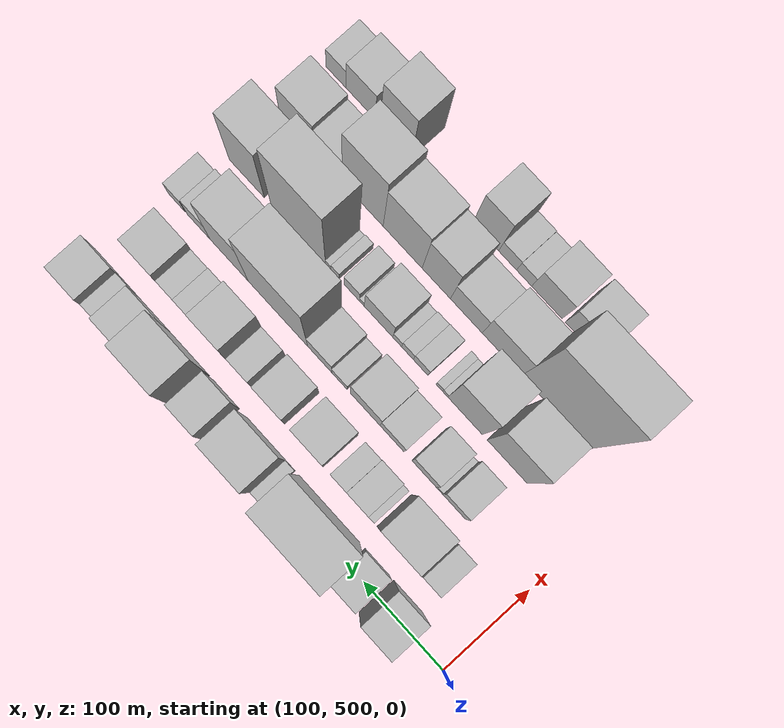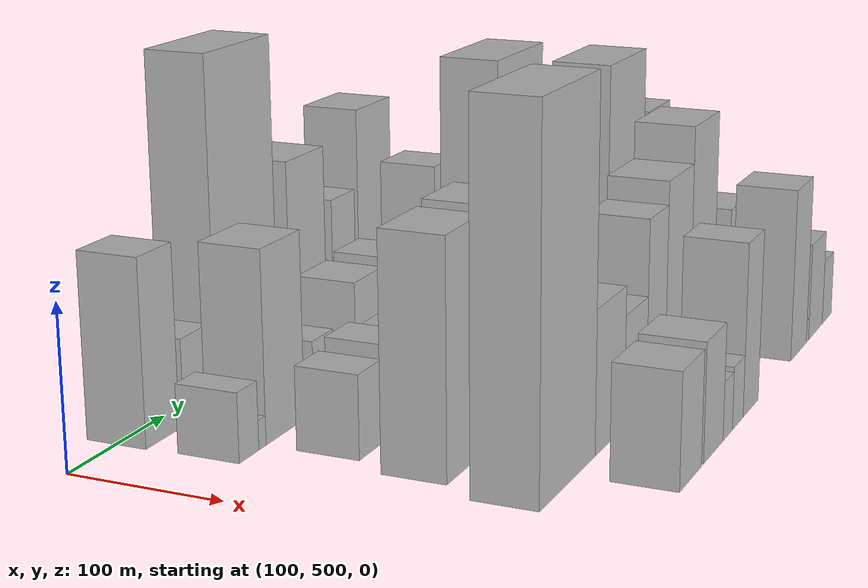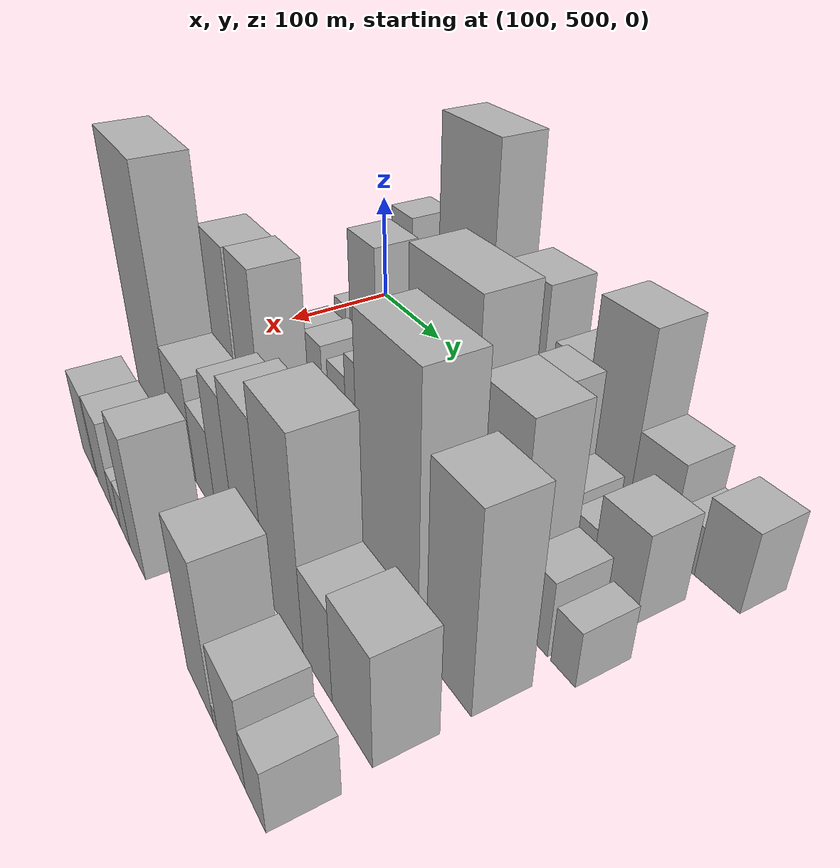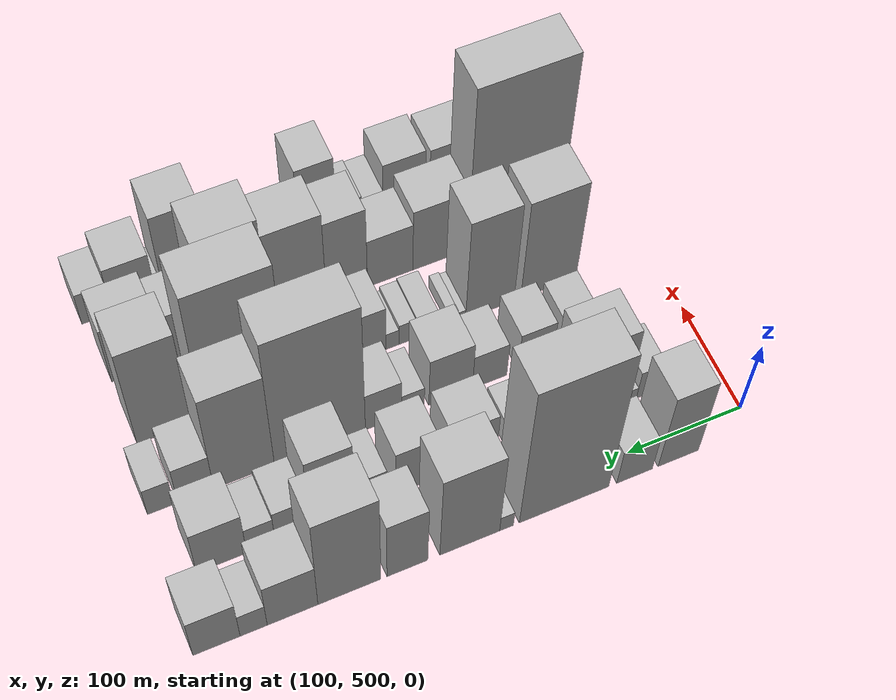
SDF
<sdf version="1.6">
 <world name="default">
  <model name="building_41">
   <static>1</static>
   <pose>100.0000 566.3018 0 0.000000 0.000000 0.000000</pose>
   <link name="link">
    <pose>0 0 57.00 0 0 0</pose>
    <collision name="collision"><geometry><box><size>40.0000 35.5671 114.0000</size></box></geometry></collision>
    <visual name="visual">
     <cast_shadows>0</cast_shadows>
     <geometry><box><size>40.0000 35.5671 114.0000</size></box></geometry>
     <material>
      <script>
       <uri>model://HANNAS_wall/materials/scripts</uri>
       <uri>model://HANNAS_wall/materials/textures</uri>
       <name>vrc/HANNAS_wall</name>
      </script>
     </material>
    </visual>
   </link>
  </model>
  <model name="building_42">
   <static>1</static>
   <pose>100.0000 604.6033 0 0.000000 0.000000 0.000000</pose>
   <link name="link">
    <pose>0 0 27.00 0 0 0</pose>
    <collision name="collision"><geometry><box><size>40.0000 31.0360 54.0000</size></box></geometry></collision>
    <visual name="visual">
     <cast_shadows>0</cast_shadows>
     <geometry><box><size>40.0000 31.0360 54.0000</size></box></geometry>
     <material>
      <script>
       <uri>model://HANNAS_wall/materials/scripts</uri>
       <uri>model://HANNAS_wall/materials/textures</uri>
       <name>vrc/HANNAS_wall</name>
      </script>
     </material>
    </visual>
   </link>
  </model>
  <model name="building_43">
   <static>1</static>
   <pose>100.0000 665.5144 0 0.000000 0.000000 0.000000</pose>
   <link name="link">
    <pose>0 0 108.00 0 0 0</pose>
    <collision name="collision"><geometry><box><size>40.0000 76.7862 216.0000</size></box></geometry></collision>
    <visual name="visual">
     <cast_shadows>0</cast_shadows>
     <geometry><box><size>40.0000 76.7862 216.0000</size></box></geometry>
     <material>
      <script>
       <uri>model://HANNAS_wall/materials/scripts</uri>
       <uri>model://HANNAS_wall/materials/textures</uri>
       <name>vrc/HANNAS_wall</name>
      </script>
     </material>
    </visual>
   </link>
  </model>
  <model name="building_44">
   <static>1</static>
   <pose>100.0000 714.7416 0 0.000000 0.000000 0.000000</pose>
   <link name="link">
    <pose>0 0 12.00 0 0 0</pose>
    <collision name="collision"><geometry><box><size>40.0000 11.6681 24.0000</size></box></geometry></collision>
    <visual name="visual">
     <cast_shadows>0</cast_shadows>
     <geometry><box><size>40.0000 11.6681 24.0000</size></box></geometry>
     <material>
      <script>
       <uri>model://HANNAS_wall/materials/scripts</uri>
       <uri>model://HANNAS_wall/materials/textures</uri>
       <name>vrc/HANNAS_wall</name>
      </script>
     </material>
    </visual>
   </link>
  </model>
  <model name="building_45">
   <static>1</static>
   <pose>100.0000 745.6814 0 0.000000 0.000000 0.000000</pose>
   <link name="link">
    <pose>0 0 66.00 0 0 0</pose>
    <collision name="collision"><geometry><box><size>40.0000 50.2116 132.0000</size></box></geometry></collision>
    <visual name="visual">
     <cast_shadows>0</cast_shadows>
     <geometry><box><size>40.0000 50.2116 132.0000</size></box></geometry>
     <material>
      <script>
       <uri>model://HANNAS_wall/materials/scripts</uri>
       <uri>model://HANNAS_wall/materials/textures</uri>
       <name>vrc/HANNAS_wall</name>
      </script>
     </material>
    </visual>
   </link>
  </model>
  <model name="building_46">
   <static>1</static>
   <pose>100.0000 797.6529 0 0.000000 0.000000 0.000000</pose>
   <link name="link">
    <pose>0 0 46.50 0 0 0</pose>
    <collision name="collision"><geometry><box><size>40.0000 33.7313 93.0000</size></box></geometry></collision>
    <visual name="visual">
     <cast_shadows>0</cast_shadows>
     <geometry><box><size>40.0000 33.7313 93.0000</size></box></geometry>
     <material>
      <script>
       <uri>model://HANNAS_wall/materials/scripts</uri>
       <uri>model://HANNAS_wall/materials/textures</uri>
       <name>vrc/HANNAS_wall</name>
      </script>
     </material>
    </visual>
   </link>
  </model>
  <model name="building_47">
   <static>1</static>
   <pose>100.0000 845.2225 0 0.000000 0.000000 0.000000</pose>
   <link name="link">
    <pose>0 0 73.50 0 0 0</pose>
    <collision name="collision"><geometry><box><size>40.0000 51.4080 147.0000</size></box></geometry></collision>
    <visual name="visual">
     <cast_shadows>0</cast_shadows>
     <geometry><box><size>40.0000 51.4080 147.0000</size></box></geometry>
     <material>
      <script>
       <uri>model://HANNAS_wall/materials/scripts</uri>
       <uri>model://HANNAS_wall/materials/textures</uri>
       <name>vrc/HANNAS_wall</name>
      </script>
     </material>
    </visual>
   </link>
  </model>
  <model name="building_48">
   <static>1</static>
   <pose>100.0000 891.3155 0 0.000000 0.000000 0.000000</pose>
   <link name="link">
    <pose>0 0 36.00 0 0 0</pose>
    <collision name="collision"><geometry><box><size>40.0000 40.7779 72.0000</size></box></geometry></collision>
    <visual name="visual">
     <cast_shadows>0</cast_shadows>
     <geometry><box><size>40.0000 40.7779 72.0000</size></box></geometry>
     <material>
      <script>
       <uri>model://HANNAS_wall/materials/scripts</uri>
       <uri>model://HANNAS_wall/materials/textures</uri>
       <name>vrc/HANNAS_wall</name>
      </script>
     </material>
    </visual>
   </link>
  </model>
  <model name="building_49">
   <static>1</static>
   <pose>100.0000 922.5424 0 0.000000 0.000000 0.000000</pose>
   <link name="link">
    <pose>0 0 19.50 0 0 0</pose>
    <collision name="collision"><geometry><box><size>40.0000 21.6759 39.0000</size></box></geometry></collision>
    <visual name="visual">
     <cast_shadows>0</cast_shadows>
     <geometry><box><size>40.0000 21.6759 39.0000</size></box></geometry>
     <material>
      <script>
       <uri>model://HANNAS_wall/materials/scripts</uri>
       <uri>model://HANNAS_wall/materials/textures</uri>
       <name>vrc/HANNAS_wall</name>
      </script>
     </material>
    </visual>
   </link>
  </model>
  <model name="building_50">
   <static>1</static>
   <pose>100.0000 952.0744 0 0.000000 0.000000 0.000000</pose>
   <link name="link">
    <pose>0 0 31.50 0 0 0</pose>
    <collision name="collision"><geometry><box><size>40.0000 37.3882 63.0000</size></box></geometry></collision>
    <visual name="visual">
     <cast_shadows>0</cast_shadows>
     <geometry><box><size>40.0000 37.3882 63.0000</size></box></geometry>
     <material>
      <script>
       <uri>model://HANNAS_wall/materials/scripts</uri>
       <uri>model://HANNAS_wall/materials/textures</uri>
       <name>vrc/HANNAS_wall</name>
      </script>
     </material>
    </visual>
   </link>
  </model>
  <model name="building_87">
   <static>1</static>
   <pose>160.0000 561.3710 0 0.000000 0.000000 0.000000</pose>
   <link name="link">
    <pose>0 0 21.00 0 0 0</pose>
    <collision name="collision"><geometry><box><size>40.0000 22.0824 42.0000</size></box></geometry></collision>
    <visual name="visual">
     <cast_shadows>0</cast_shadows>
     <geometry><box><size>40.0000 22.0824 42.0000</size></box></geometry>
     <material>
      <script>
       <uri>model://HANNAS_wall/materials/scripts</uri>
       <uri>model://HANNAS_wall/materials/textures</uri>
       <name>vrc/HANNAS_wall</name>
      </script>
     </material>
    </visual>
   </link>
  </model>
  <model name="building_88">
   <static>1</static>
   <pose>160.0000 576.6413 0 0.000000 0.000000 0.000000</pose>
   <link name="link">
    <pose>0 0 9.00 0 0 0</pose>
    <collision name="collision"><geometry><box><size>40.0000 8.4582 18.0000</size></box></geometry></collision>
    <visual name="visual">
     <cast_shadows>0</cast_shadows>
     <geometry><box><size>40.0000 8.4582 18.0000</size></box></geometry>
     <material>
      <script>
       <uri>model://HANNAS_wall/materials/scripts</uri>
       <uri>model://HANNAS_wall/materials/textures</uri>
       <name>vrc/HANNAS_wall</name>
      </script>
     </material>
    </visual>
   </link>
  </model>
  <model name="building_89">
   <static>1</static>
   <pose>160.0000 603.9337 0 0.000000 0.000000 0.000000</pose>
   <link name="link">
    <pose>0 0 58.50 0 0 0</pose>
    <collision name="collision"><geometry><box><size>40.0000 46.1266 117.0000</size></box></geometry></collision>
    <visual name="visual">
     <cast_shadows>0</cast_shadows>
     <geometry><box><size>40.0000 46.1266 117.0000</size></box></geometry>
     <material>
      <script>
       <uri>model://HANNAS_wall/materials/scripts</uri>
       <uri>model://HANNAS_wall/materials/textures</uri>
       <name>vrc/HANNAS_wall</name>
      </script>
     </material>
    </visual>
   </link>
  </model>
  <model name="building_90">
   <static>1</static>
   <pose>160.0000 634.9736 0 0.000000 0.000000 0.000000</pose>
   <link name="link">
    <pose>0 0 9.00 0 0 0</pose>
    <collision name="collision"><geometry><box><size>40.0000 7.9532 18.0000</size></box></geometry></collision>
    <visual name="visual">
     <cast_shadows>0</cast_shadows>
     <geometry><box><size>40.0000 7.9532 18.0000</size></box></geometry>
     <material>
      <script>
       <uri>model://HANNAS_wall/materials/scripts</uri>
       <uri>model://HANNAS_wall/materials/textures</uri>
       <name>vrc/HANNAS_wall</name>
      </script>
     </material>
    </visual>
   </link>
  </model>
  <model name="building_91">
   <static>1</static>
   <pose>160.0000 652.3972 0 0.000000 0.000000 0.000000</pose>
   <link name="link">
    <pose>0 0 22.50 0 0 0</pose>
    <collision name="collision"><geometry><box><size>40.0000 26.8939 45.0000</size></box></geometry></collision>
    <visual name="visual">
     <cast_shadows>0</cast_shadows>
     <geometry><box><size>40.0000 26.8939 45.0000</size></box></geometry>
     <material>
      <script>
       <uri>model://HANNAS_wall/materials/scripts</uri>
       <uri>model://HANNAS_wall/materials/textures</uri>
       <name>vrc/HANNAS_wall</name>
      </script>
     </material>
    </visual>
   </link>
  </model>
  <model name="building_92">
   <static>1</static>
   <pose>160.0000 676.0614 0 0.000000 0.000000 0.000000</pose>
   <link name="link">
    <pose>0 0 18.00 0 0 0</pose>
    <collision name="collision"><geometry><box><size>40.0000 20.4345 36.0000</size></box></geometry></collision>
    <visual name="visual">
     <cast_shadows>0</cast_shadows>
     <geometry><box><size>40.0000 20.4345 36.0000</size></box></geometry>
     <material>
      <script>
       <uri>model://HANNAS_wall/materials/scripts</uri>
       <uri>model://HANNAS_wall/materials/textures</uri>
       <name>vrc/HANNAS_wall</name>
      </script>
     </material>
    </visual>
   </link>
  </model>
  <model name="building_93">
   <static>1</static>
   <pose>160.0000 715.0774 0 0.000000 0.000000 0.000000</pose>
   <link name="link">
    <pose>0 0 33.00 0 0 0</pose>
    <collision name="collision"><geometry><box><size>40.0000 39.5974 66.0000</size></box></geometry></collision>
    <visual name="visual">
     <cast_shadows>0</cast_shadows>
     <geometry><box><size>40.0000 39.5974 66.0000</size></box></geometry>
     <material>
      <script>
       <uri>model://HANNAS_wall/materials/scripts</uri>
       <uri>model://HANNAS_wall/materials/textures</uri>
       <name>vrc/HANNAS_wall</name>
      </script>
     </material>
    </visual>
   </link>
  </model>
  <model name="building_94">
   <static>1</static>
   <pose>160.0000 763.1741 0 0.000000 0.000000 0.000000</pose>
   <link name="link">
    <pose>0 0 34.50 0 0 0</pose>
    <collision name="collision"><geometry><box><size>40.0000 36.5960 69.0000</size></box></geometry></collision>
    <visual name="visual">
     <cast_shadows>0</cast_shadows>
     <geometry><box><size>40.0000 36.5960 69.0000</size></box></geometry>
     <material>
      <script>
       <uri>model://HANNAS_wall/materials/scripts</uri>
       <uri>model://HANNAS_wall/materials/textures</uri>
       <name>vrc/HANNAS_wall</name>
      </script>
     </material>
    </visual>
   </link>
  </model>
  <model name="building_95">
   <static>1</static>
   <pose>160.0000 801.8391 0 0.000000 0.000000 0.000000</pose>
   <link name="link">
    <pose>0 0 24.00 0 0 0</pose>
    <collision name="collision"><geometry><box><size>40.0000 26.7340 48.0000</size></box></geometry></collision>
    <visual name="visual">
     <cast_shadows>0</cast_shadows>
     <geometry><box><size>40.0000 26.7340 48.0000</size></box></geometry>
     <material>
      <script>
       <uri>model://HANNAS_wall/materials/scripts</uri>
       <uri>model://HANNAS_wall/materials/textures</uri>
       <name>vrc/HANNAS_wall</name>
      </script>
     </material>
    </visual>
   </link>
  </model>
  <model name="building_96">
   <static>1</static>
   <pose>160.0000 834.2113 0 0.000000 0.000000 0.000000</pose>
   <link name="link">
    <pose>0 0 57.00 0 0 0</pose>
    <collision name="collision"><geometry><box><size>40.0000 38.0105 114.0000</size></box></geometry></collision>
    <visual name="visual">
     <cast_shadows>0</cast_shadows>
     <geometry><box><size>40.0000 38.0105 114.0000</size></box></geometry>
     <material>
      <script>
       <uri>model://HANNAS_wall/materials/scripts</uri>
       <uri>model://HANNAS_wall/materials/textures</uri>
       <name>vrc/HANNAS_wall</name>
      </script>
     </material>
    </visual>
   </link>
  </model>
  <model name="building_97">
   <static>1</static>
   <pose>160.0000 867.4318 0 0.000000 0.000000 0.000000</pose>
   <link name="link">
    <pose>0 0 25.50 0 0 0</pose>
    <collision name="collision"><geometry><box><size>40.0000 28.4305 51.0000</size></box></geometry></collision>
    <visual name="visual">
     <cast_shadows>0</cast_shadows>
     <geometry><box><size>40.0000 28.4305 51.0000</size></box></geometry>
     <material>
      <script>
       <uri>model://HANNAS_wall/materials/scripts</uri>
       <uri>model://HANNAS_wall/materials/textures</uri>
       <name>vrc/HANNAS_wall</name>
      </script>
     </material>
    </visual>
   </link>
  </model>
  <model name="building_98">
   <static>1</static>
   <pose>160.0000 893.3154 0 0.000000 0.000000 0.000000</pose>
   <link name="link">
    <pose>0 0 21.00 0 0 0</pose>
    <collision name="collision"><geometry><box><size>40.0000 23.3367 42.0000</size></box></geometry></collision>
    <visual name="visual">
     <cast_shadows>0</cast_shadows>
     <geometry><box><size>40.0000 23.3367 42.0000</size></box></geometry>
     <material>
      <script>
       <uri>model://HANNAS_wall/materials/scripts</uri>
       <uri>model://HANNAS_wall/materials/textures</uri>
       <name>vrc/HANNAS_wall</name>
      </script>
     </material>
    </visual>
   </link>
  </model>
  <model name="building_99">
   <static>1</static>
   <pose>160.0000 925.3493 0 0.000000 0.000000 0.000000</pose>
   <link name="link">
    <pose>0 0 34.50 0 0 0</pose>
    <collision name="collision"><geometry><box><size>40.0000 40.7311 69.0000</size></box></geometry></collision>
    <visual name="visual">
     <cast_shadows>0</cast_shadows>
     <geometry><box><size>40.0000 40.7311 69.0000</size></box></geometry>
     <material>
      <script>
       <uri>model://HANNAS_wall/materials/scripts</uri>
       <uri>model://HANNAS_wall/materials/textures</uri>
       <name>vrc/HANNAS_wall</name>
      </script>
     </material>
    </visual>
   </link>
  </model>
  <model name="building_141">
   <static>1</static>
   <pose>220.0000 595.1587 0 0.000000 0.000000 0.000000</pose>
   <link name="link">
    <pose>0 0 25.50 0 0 0</pose>
    <collision name="collision"><geometry><box><size>40.0000 29.1720 51.0000</size></box></geometry></collision>
    <visual name="visual">
     <cast_shadows>0</cast_shadows>
     <geometry><box><size>40.0000 29.1720 51.0000</size></box></geometry>
     <material>
      <script>
       <uri>model://HANNAS_wall/materials/scripts</uri>
       <uri>model://HANNAS_wall/materials/textures</uri>
       <name>vrc/HANNAS_wall</name>
      </script>
     </material>
    </visual>
   </link>
  </model>
  <model name="building_142">
   <static>1</static>
   <pose>220.0000 613.5815 0 0.000000 0.000000 0.000000</pose>
   <link name="link">
    <pose>0 0 9.00 0 0 0</pose>
    <collision name="collision"><geometry><box><size>40.0000 7.6735 18.0000</size></box></geometry></collision>
    <visual name="visual">
     <cast_shadows>0</cast_shadows>
     <geometry><box><size>40.0000 7.6735 18.0000</size></box></geometry>
     <material>
      <script>
       <uri>model://HANNAS_wall/materials/scripts</uri>
       <uri>model://HANNAS_wall/materials/textures</uri>
       <name>vrc/HANNAS_wall</name>
      </script>
     </material>
    </visual>
   </link>
  </model>
  <model name="building_143">
   <static>1</static>
   <pose>220.0000 632.9064 0 0.000000 0.000000 0.000000</pose>
   <link name="link">
    <pose>0 0 28.50 0 0 0</pose>
    <collision name="collision"><geometry><box><size>40.0000 30.9764 57.0000</size></box></geometry></collision>
    <visual name="visual">
     <cast_shadows>0</cast_shadows>
     <geometry><box><size>40.0000 30.9764 57.0000</size></box></geometry>
     <material>
      <script>
       <uri>model://HANNAS_wall/materials/scripts</uri>
       <uri>model://HANNAS_wall/materials/textures</uri>
       <name>vrc/HANNAS_wall</name>
      </script>
     </material>
    </visual>
   </link>
  </model>
  <model name="building_144">
   <static>1</static>
   <pose>220.0000 673.5366 0 0.000000 0.000000 0.000000</pose>
   <link name="link">
    <pose>0 0 25.50 0 0 0</pose>
    <collision name="collision"><geometry><box><size>40.0000 30.2840 51.0000</size></box></geometry></collision>
    <visual name="visual">
     <cast_shadows>0</cast_shadows>
     <geometry><box><size>40.0000 30.2840 51.0000</size></box></geometry>
     <material>
      <script>
       <uri>model://HANNAS_wall/materials/scripts</uri>
       <uri>model://HANNAS_wall/materials/textures</uri>
       <name>vrc/HANNAS_wall</name>
      </script>
     </material>
    </visual>
   </link>
  </model>
  <model name="building_145">
   <static>1</static>
   <pose>220.0000 707.7523 0 0.000000 0.000000 0.000000</pose>
   <link name="link">
    <pose>0 0 36.00 0 0 0</pose>
    <collision name="collision"><geometry><box><size>40.0000 38.1472 72.0000</size></box></geometry></collision>
    <visual name="visual">
     <cast_shadows>0</cast_shadows>
     <geometry><box><size>40.0000 38.1472 72.0000</size></box></geometry>
     <material>
      <script>
       <uri>model://HANNAS_wall/materials/scripts</uri>
       <uri>model://HANNAS_wall/materials/textures</uri>
       <name>vrc/HANNAS_wall</name>
      </script>
     </material>
    </visual>
   </link>
  </model>
  <model name="building_146">
   <static>1</static>
   <pose>220.0000 740.6245 0 0.000000 0.000000 0.000000</pose>
   <link name="link">
    <pose>0 0 16.50 0 0 0</pose>
    <collision name="collision"><geometry><box><size>40.0000 19.5973 33.0000</size></box></geometry></collision>
    <visual name="visual">
     <cast_shadows>0</cast_shadows>
     <geometry><box><size>40.0000 19.5973 33.0000</size></box></geometry>
     <material>
      <script>
       <uri>model://HANNAS_wall/materials/scripts</uri>
       <uri>model://HANNAS_wall/materials/textures</uri>
       <name>vrc/HANNAS_wall</name>
      </script>
     </material>
    </visual>
   </link>
  </model>
  <model name="building_147">
   <static>1</static>
   <pose>220.0000 765.9571 0 0.000000 0.000000 0.000000</pose>
   <link name="link">
    <pose>0 0 28.50 0 0 0</pose>
    <collision name="collision"><geometry><box><size>40.0000 31.0680 57.0000</size></box></geometry></collision>
    <visual name="visual">
     <cast_shadows>0</cast_shadows>
     <geometry><box><size>40.0000 31.0680 57.0000</size></box></geometry>
     <material>
      <script>
       <uri>model://HANNAS_wall/materials/scripts</uri>
       <uri>model://HANNAS_wall/materials/textures</uri>
       <name>vrc/HANNAS_wall</name>
      </script>
     </material>
    </visual>
   </link>
  </model>
  <model name="building_148">
   <static>1</static>
   <pose>220.0000 820.0564 0 0.000000 0.000000 0.000000</pose>
   <link name="link">
    <pose>0 0 97.50 0 0 0</pose>
    <collision name="collision"><geometry><box><size>40.0000 77.1307 195.0000</size></box></geometry></collision>
    <visual name="visual">
     <cast_shadows>0</cast_shadows>
     <geometry><box><size>40.0000 77.1307 195.0000</size></box></geometry>
     <material>
      <script>
       <uri>model://HANNAS_wall/materials/scripts</uri>
       <uri>model://HANNAS_wall/materials/textures</uri>
       <name>vrc/HANNAS_wall</name>
      </script>
     </material>
    </visual>
   </link>
  </model>
  <model name="building_149">
   <static>1</static>
   <pose>220.0000 883.8739 0 0.000000 0.000000 0.000000</pose>
   <link name="link">
    <pose>0 0 73.50 0 0 0</pose>
    <collision name="collision"><geometry><box><size>40.0000 50.5042 147.0000</size></box></geometry></collision>
    <visual name="visual">
     <cast_shadows>0</cast_shadows>
     <geometry><box><size>40.0000 50.5042 147.0000</size></box></geometry>
     <material>
      <script>
       <uri>model://HANNAS_wall/materials/scripts</uri>
       <uri>model://HANNAS_wall/materials/textures</uri>
       <name>vrc/HANNAS_wall</name>
      </script>
     </material>
    </visual>
   </link>
  </model>
  <model name="building_150">
   <static>1</static>
   <pose>220.0000 924.0422 0 0.000000 0.000000 0.000000</pose>
   <link name="link">
    <pose>0 0 28.50 0 0 0</pose>
    <collision name="collision"><geometry><box><size>40.0000 29.8325 57.0000</size></box></geometry></collision>
    <visual name="visual">
     <cast_shadows>0</cast_shadows>
     <geometry><box><size>40.0000 29.8325 57.0000</size></box></geometry>
     <material>
      <script>
       <uri>model://HANNAS_wall/materials/scripts</uri>
       <uri>model://HANNAS_wall/materials/textures</uri>
       <name>vrc/HANNAS_wall</name>
      </script>
     </material>
    </visual>
   </link>
  </model>
  <model name="building_151">
   <static>1</static>
   <pose>220.0000 952.8251 0 0.000000 0.000000 0.000000</pose>
   <link name="link">
    <pose>0 0 21.00 0 0 0</pose>
    <collision name="collision"><geometry><box><size>40.0000 21.7333 42.0000</size></box></geometry></collision>
    <visual name="visual">
     <cast_shadows>0</cast_shadows>
     <geometry><box><size>40.0000 21.7333 42.0000</size></box></geometry>
     <material>
      <script>
       <uri>model://HANNAS_wall/materials/scripts</uri>
       <uri>model://HANNAS_wall/materials/textures</uri>
       <name>vrc/HANNAS_wall</name>
      </script>
     </material>
    </visual>
   </link>
  </model>
  <model name="building_196">
   <static>1</static>
   <pose>280.0000 592.4224 0 0.000000 0.000000 0.000000</pose>
   <link name="link">
    <pose>0 0 70.50 0 0 0</pose>
    <collision name="collision"><geometry><box><size>40.0000 50.5708 141.0000</size></box></geometry></collision>
    <visual name="visual">
     <cast_shadows>0</cast_shadows>
     <geometry><box><size>40.0000 50.5708 141.0000</size></box></geometry>
     <material>
      <script>
       <uri>model://HANNAS_wall/materials/scripts</uri>
       <uri>model://HANNAS_wall/materials/textures</uri>
       <name>vrc/HANNAS_wall</name>
      </script>
     </material>
    </visual>
   </link>
  </model>
  <model name="building_197">
   <static>1</static>
   <pose>280.0000 645.5745 0 0.000000 0.000000 0.000000</pose>
   <link name="link">
    <pose>0 0 72.00 0 0 0</pose>
    <collision name="collision"><geometry><box><size>40.0000 43.7333 144.0000</size></box></geometry></collision>
    <visual name="visual">
     <cast_shadows>0</cast_shadows>
     <geometry><box><size>40.0000 43.7333 144.0000</size></box></geometry>
     <material>
      <script>
       <uri>model://HANNAS_wall/materials/scripts</uri>
       <uri>model://HANNAS_wall/materials/textures</uri>
       <name>vrc/HANNAS_wall</name>
      </script>
     </material>
    </visual>
   </link>
  </model>
  <model name="building_198">
   <static>1</static>
   <pose>280.0000 670.7339 0 0.000000 0.000000 0.000000</pose>
   <link name="link">
    <pose>0 0 7.50 0 0 0</pose>
    <collision name="collision"><geometry><box><size>40.0000 6.5856 15.0000</size></box></geometry></collision>
    <visual name="visual">
     <cast_shadows>0</cast_shadows>
     <geometry><box><size>40.0000 6.5856 15.0000</size></box></geometry>
     <material>
      <script>
       <uri>model://HANNAS_wall/materials/scripts</uri>
       <uri>model://HANNAS_wall/materials/textures</uri>
       <name>vrc/HANNAS_wall</name>
      </script>
     </material>
    </visual>
   </link>
  </model>
  <model name="building_199">
   <static>1</static>
   <pose>280.0000 678.3784 0 0.000000 0.000000 0.000000</pose>
   <link name="link">
    <pose>0 0 9.00 0 0 0</pose>
    <collision name="collision"><geometry><box><size>40.0000 8.7033 18.0000</size></box></geometry></collision>
    <visual name="visual">
     <cast_shadows>0</cast_shadows>
     <geometry><box><size>40.0000 8.7033 18.0000</size></box></geometry>
     <material>
      <script>
       <uri>model://HANNAS_wall/materials/scripts</uri>
       <uri>model://HANNAS_wall/materials/textures</uri>
       <name>vrc/HANNAS_wall</name>
      </script>
     </material>
    </visual>
   </link>
  </model>
  <model name="building_200">
   <static>1</static>
   <pose>280.0000 702.0913 0 0.000000 0.000000 0.000000</pose>
   <link name="link">
    <pose>0 0 16.50 0 0 0</pose>
    <collision name="collision"><geometry><box><size>40.0000 18.7225 33.0000</size></box></geometry></collision>
    <visual name="visual">
     <cast_shadows>0</cast_shadows>
     <geometry><box><size>40.0000 18.7225 33.0000</size></box></geometry>
     <material>
      <script>
       <uri>model://HANNAS_wall/materials/scripts</uri>
       <uri>model://HANNAS_wall/materials/textures</uri>
       <name>vrc/HANNAS_wall</name>
      </script>
     </material>
    </visual>
   </link>
  </model>
  <model name="building_201">
   <static>1</static>
   <pose>280.0000 719.0115 0 0.000000 0.000000 0.000000</pose>
   <link name="link">
    <pose>0 0 15.00 0 0 0</pose>
    <collision name="collision"><geometry><box><size>40.0000 15.1179 30.0000</size></box></geometry></collision>
    <visual name="visual">
     <cast_shadows>0</cast_shadows>
     <geometry><box><size>40.0000 15.1179 30.0000</size></box></geometry>
     <material>
      <script>
       <uri>model://HANNAS_wall/materials/scripts</uri>
       <uri>model://HANNAS_wall/materials/textures</uri>
       <name>vrc/HANNAS_wall</name>
      </script>
     </material>
    </visual>
   </link>
  </model>
  <model name="building_202">
   <static>1</static>
   <pose>280.0000 732.2593 0 0.000000 0.000000 0.000000</pose>
   <link name="link">
    <pose>0 0 12.00 0 0 0</pose>
    <collision name="collision"><geometry><box><size>40.0000 11.3776 24.0000</size></box></geometry></collision>
    <visual name="visual">
     <cast_shadows>0</cast_shadows>
     <geometry><box><size>40.0000 11.3776 24.0000</size></box></geometry>
     <material>
      <script>
       <uri>model://HANNAS_wall/materials/scripts</uri>
       <uri>model://HANNAS_wall/materials/textures</uri>
       <name>vrc/HANNAS_wall</name>
      </script>
     </material>
    </visual>
   </link>
  </model>
  <model name="building_203">
   <static>1</static>
   <pose>280.0000 756.3349 0 0.000000 0.000000 0.000000</pose>
   <link name="link">
    <pose>0 0 33.00 0 0 0</pose>
    <collision name="collision"><geometry><box><size>40.0000 36.7736 66.0000</size></box></geometry></collision>
    <visual name="visual">
     <cast_shadows>0</cast_shadows>
     <geometry><box><size>40.0000 36.7736 66.0000</size></box></geometry>
     <material>
      <script>
       <uri>model://HANNAS_wall/materials/scripts</uri>
       <uri>model://HANNAS_wall/materials/textures</uri>
       <name>vrc/HANNAS_wall</name>
      </script>
     </material>
    </visual>
   </link>
  </model>
  <model name="building_204">
   <static>1</static>
   <pose>280.0000 777.7463 0 0.000000 0.000000 0.000000</pose>
   <link name="link">
    <pose>0 0 7.50 0 0 0</pose>
    <collision name="collision"><geometry><box><size>40.0000 6.0492 15.0000</size></box></geometry></collision>
    <visual name="visual">
     <cast_shadows>0</cast_shadows>
     <geometry><box><size>40.0000 6.0492 15.0000</size></box></geometry>
     <material>
      <script>
       <uri>model://HANNAS_wall/materials/scripts</uri>
       <uri>model://HANNAS_wall/materials/textures</uri>
       <name>vrc/HANNAS_wall</name>
      </script>
     </material>
    </visual>
   </link>
  </model>
  <model name="building_205">
   <static>1</static>
   <pose>280.0000 790.8953 0 0.000000 0.000000 0.000000</pose>
   <link name="link">
    <pose>0 0 19.50 0 0 0</pose>
    <collision name="collision"><geometry><box><size>40.0000 20.2487 39.0000</size></box></geometry></collision>
    <visual name="visual">
     <cast_shadows>0</cast_shadows>
     <geometry><box><size>40.0000 20.2487 39.0000</size></box></geometry>
     <material>
      <script>
       <uri>model://HANNAS_wall/materials/scripts</uri>
       <uri>model://HANNAS_wall/materials/textures</uri>
       <name>vrc/HANNAS_wall</name>
      </script>
     </material>
    </visual>
   </link>
  </model>
  <model name="building_206">
   <static>1</static>
   <pose>280.0000 812.2938 0 0.000000 0.000000 0.000000</pose>
   <link name="link">
    <pose>0 0 12.00 0 0 0</pose>
    <collision name="collision"><geometry><box><size>40.0000 10.5484 24.0000</size></box></geometry></collision>
    <visual name="visual">
     <cast_shadows>0</cast_shadows>
     <geometry><box><size>40.0000 10.5484 24.0000</size></box></geometry>
     <material>
      <script>
       <uri>model://HANNAS_wall/materials/scripts</uri>
       <uri>model://HANNAS_wall/materials/textures</uri>
       <name>vrc/HANNAS_wall</name>
      </script>
     </material>
    </visual>
   </link>
  </model>
  <model name="building_207">
   <static>1</static>
   <pose>280.0000 821.1842 0 0.000000 0.000000 0.000000</pose>
   <link name="link">
    <pose>0 0 9.00 0 0 0</pose>
    <collision name="collision"><geometry><box><size>40.0000 7.2324 18.0000</size></box></geometry></collision>
    <visual name="visual">
     <cast_shadows>0</cast_shadows>
     <geometry><box><size>40.0000 7.2324 18.0000</size></box></geometry>
     <material>
      <script>
       <uri>model://HANNAS_wall/materials/scripts</uri>
       <uri>model://HANNAS_wall/materials/textures</uri>
       <name>vrc/HANNAS_wall</name>
      </script>
     </material>
    </visual>
   </link>
  </model>
  <model name="building_208">
   <static>1</static>
   <pose>280.0000 860.3508 0 0.000000 0.000000 0.000000</pose>
   <link name="link">
    <pose>0 0 94.50 0 0 0</pose>
    <collision name="collision"><geometry><box><size>40.0000 71.1009 189.0000</size></box></geometry></collision>
    <visual name="visual">
     <cast_shadows>0</cast_shadows>
     <geometry><box><size>40.0000 71.1009 189.0000</size></box></geometry>
     <material>
      <script>
       <uri>model://HANNAS_wall/materials/scripts</uri>
       <uri>model://HANNAS_wall/materials/textures</uri>
       <name>vrc/HANNAS_wall</name>
      </script>
     </material>
    </visual>
   </link>
  </model>
  <model name="building_209">
   <static>1</static>
   <pose>280.0000 927.9796 0 0.000000 0.000000 0.000000</pose>
   <link name="link">
    <pose>0 0 72.00 0 0 0</pose>
    <collision name="collision"><geometry><box><size>40.0000 46.1568 144.0000</size></box></geometry></collision>
    <visual name="visual">
     <cast_shadows>0</cast_shadows>
     <geometry><box><size>40.0000 46.1568 144.0000</size></box></geometry>
     <material>
      <script>
       <uri>model://HANNAS_wall/materials/scripts</uri>
       <uri>model://HANNAS_wall/materials/textures</uri>
       <name>vrc/HANNAS_wall</name>
      </script>
     </material>
    </visual>
   </link>
  </model>
  <model name="building_260">
   <static>1</static>
   <pose>340.0000 595.4690 0 0.000000 0.000000 0.000000</pose>
   <link name="link">
    <pose>0 0 111.00 0 0 0</pose>
    <collision name="collision"><geometry><box><size>40.0000 85.7176 222.0000</size></box></geometry></collision>
    <visual name="visual">
     <cast_shadows>0</cast_shadows>
     <geometry><box><size>40.0000 85.7176 222.0000</size></box></geometry>
     <material>
      <script>
       <uri>model://HANNAS_wall/materials/scripts</uri>
       <uri>model://HANNAS_wall/materials/textures</uri>
       <name>vrc/HANNAS_wall</name>
      </script>
     </material>
    </visual>
   </link>
  </model>
  <model name="building_261">
   <static>1</static>
   <pose>340.0000 663.2636 0 0.000000 0.000000 0.000000</pose>
   <link name="link">
    <pose>0 0 43.50 0 0 0</pose>
    <collision name="collision"><geometry><box><size>40.0000 49.8717 87.0000</size></box></geometry></collision>
    <visual name="visual">
     <cast_shadows>0</cast_shadows>
     <geometry><box><size>40.0000 49.8717 87.0000</size></box></geometry>
     <material>
      <script>
       <uri>model://HANNAS_wall/materials/scripts</uri>
       <uri>model://HANNAS_wall/materials/textures</uri>
       <name>vrc/HANNAS_wall</name>
      </script>
     </material>
    </visual>
   </link>
  </model>
  <model name="building_262">
   <static>1</static>
   <pose>340.0000 708.5515 0 0.000000 0.000000 0.000000</pose>
   <link name="link">
    <pose>0 0 34.50 0 0 0</pose>
    <collision name="collision"><geometry><box><size>40.0000 40.7040 69.0000</size></box></geometry></collision>
    <visual name="visual">
     <cast_shadows>0</cast_shadows>
     <geometry><box><size>40.0000 40.7040 69.0000</size></box></geometry>
     <material>
      <script>
       <uri>model://HANNAS_wall/materials/scripts</uri>
       <uri>model://HANNAS_wall/materials/textures</uri>
       <name>vrc/HANNAS_wall</name>
      </script>
     </material>
    </visual>
   </link>
  </model>
  <model name="building_263">
   <static>1</static>
   <pose>340.0000 747.1014 0 0.000000 0.000000 0.000000</pose>
   <link name="link">
    <pose>0 0 58.50 0 0 0</pose>
    <collision name="collision"><geometry><box><size>40.0000 36.3958 117.0000</size></box></geometry></collision>
    <visual name="visual">
     <cast_shadows>0</cast_shadows>
     <geometry><box><size>40.0000 36.3958 117.0000</size></box></geometry>
     <material>
      <script>
       <uri>model://HANNAS_wall/materials/scripts</uri>
       <uri>model://HANNAS_wall/materials/textures</uri>
       <name>vrc/HANNAS_wall</name>
      </script>
     </material>
    </visual>
   </link>
  </model>
  <model name="building_264">
   <static>1</static>
   <pose>340.0000 790.5673 0 0.000000 0.000000 0.000000</pose>
   <link name="link">
    <pose>0 0 66.00 0 0 0</pose>
    <collision name="collision"><geometry><box><size>40.0000 50.5360 132.0000</size></box></geometry></collision>
    <visual name="visual">
     <cast_shadows>0</cast_shadows>
     <geometry><box><size>40.0000 50.5360 132.0000</size></box></geometry>
     <material>
      <script>
       <uri>model://HANNAS_wall/materials/scripts</uri>
       <uri>model://HANNAS_wall/materials/textures</uri>
       <name>vrc/HANNAS_wall</name>
      </script>
     </material>
    </visual>
   </link>
  </model>
  <model name="building_265">
   <static>1</static>
   <pose>340.0000 842.5076 0 0.000000 0.000000 0.000000</pose>
   <link name="link">
    <pose>0 0 78.00 0 0 0</pose>
    <collision name="collision"><geometry><box><size>40.0000 53.3447 156.0000</size></box></geometry></collision>
    <visual name="visual">
     <cast_shadows>0</cast_shadows>
     <geometry><box><size>40.0000 53.3447 156.0000</size></box></geometry>
     <material>
      <script>
       <uri>model://HANNAS_wall/materials/scripts</uri>
       <uri>model://HANNAS_wall/materials/textures</uri>
       <name>vrc/HANNAS_wall</name>
      </script>
     </material>
    </visual>
   </link>
  </model>
  <model name="building_266">
   <static>1</static>
   <pose>340.0000 887.4546 0 0.000000 0.000000 0.000000</pose>
   <link name="link">
    <pose>0 0 34.50 0 0 0</pose>
    <collision name="collision"><geometry><box><size>40.0000 36.5492 69.0000</size></box></geometry></collision>
    <visual name="visual">
     <cast_shadows>0</cast_shadows>
     <geometry><box><size>40.0000 36.5492 69.0000</size></box></geometry>
     <material>
      <script>
       <uri>model://HANNAS_wall/materials/scripts</uri>
       <uri>model://HANNAS_wall/materials/textures</uri>
       <name>vrc/HANNAS_wall</name>
      </script>
     </material>
    </visual>
   </link>
  </model>
  <model name="building_267">
   <static>1</static>
   <pose>340.0000 928.5316 0 0.000000 0.000000 0.000000</pose>
   <link name="link">
    <pose>0 0 40.50 0 0 0</pose>
    <collision name="collision"><geometry><box><size>40.0000 45.6047 81.0000</size></box></geometry></collision>
    <visual name="visual">
     <cast_shadows>0</cast_shadows>
     <geometry><box><size>40.0000 45.6047 81.0000</size></box></geometry>
     <material>
      <script>
       <uri>model://HANNAS_wall/materials/scripts</uri>
       <uri>model://HANNAS_wall/materials/textures</uri>
       <name>vrc/HANNAS_wall</name>
      </script>
     </material>
    </visual>
   </link>
  </model>
  <model name="building_315">
   <static>1</static>
   <pose>400.0000 626.5347 0 0.000000 0.000000 0.000000</pose>
   <link name="link">
    <pose>0 0 34.50 0 0 0</pose>
    <collision name="collision"><geometry><box><size>40.0000 40.1283 69.0000</size></box></geometry></collision>
    <visual name="visual">
     <cast_shadows>0</cast_shadows>
     <geometry><box><size>40.0000 40.1283 69.0000</size></box></geometry>
     <material>
      <script>
       <uri>model://HANNAS_wall/materials/scripts</uri>
       <uri>model://HANNAS_wall/materials/textures</uri>
       <name>vrc/HANNAS_wall</name>
      </script>
     </material>
    </visual>
   </link>
  </model>
  <model name="building_316">
   <static>1</static>
   <pose>400.0000 669.9298 0 0.000000 0.000000 0.000000</pose>
   <link name="link">
    <pose>0 0 36.00 0 0 0</pose>
    <collision name="collision"><geometry><box><size>40.0000 38.6619 72.0000</size></box></geometry></collision>
    <visual name="visual">
     <cast_shadows>0</cast_shadows>
     <geometry><box><size>40.0000 38.6619 72.0000</size></box></geometry>
     <material>
      <script>
       <uri>model://HANNAS_wall/materials/scripts</uri>
       <uri>model://HANNAS_wall/materials/textures</uri>
       <name>vrc/HANNAS_wall</name>
      </script>
     </material>
    </visual>
   </link>
  </model>
  <model name="building_317">
   <static>1</static>
   <pose>400.0000 698.8847 0 0.000000 0.000000 0.000000</pose>
   <link name="link">
    <pose>0 0 18.00 0 0 0</pose>
    <collision name="collision"><geometry><box><size>40.0000 19.2479 36.0000</size></box></geometry></collision>
    <visual name="visual">
     <cast_shadows>0</cast_shadows>
     <geometry><box><size>40.0000 19.2479 36.0000</size></box></geometry>
     <material>
      <script>
       <uri>model://HANNAS_wall/materials/scripts</uri>
       <uri>model://HANNAS_wall/materials/textures</uri>
       <name>vrc/HANNAS_wall</name>
      </script>
     </material>
    </visual>
   </link>
  </model>
  <model name="building_318">
   <static>1</static>
   <pose>400.0000 720.0244 0 0.000000 0.000000 0.000000</pose>
   <link name="link">
    <pose>0 0 19.50 0 0 0</pose>
    <collision name="collision"><geometry><box><size>40.0000 23.0315 39.0000</size></box></geometry></collision>
    <visual name="visual">
     <cast_shadows>0</cast_shadows>
     <geometry><box><size>40.0000 23.0315 39.0000</size></box></geometry>
     <material>
      <script>
       <uri>model://HANNAS_wall/materials/scripts</uri>
       <uri>model://HANNAS_wall/materials/textures</uri>
       <name>vrc/HANNAS_wall</name>
      </script>
     </material>
    </visual>
   </link>
  </model>
  <model name="building_319">
   <static>1</static>
   <pose>400.0000 748.3150 0 0.000000 0.000000 0.000000</pose>
   <link name="link">
    <pose>0 0 54.00 0 0 0</pose>
    <collision name="collision"><geometry><box><size>40.0000 33.5497 108.0000</size></box></geometry></collision>
    <visual name="visual">
     <cast_shadows>0</cast_shadows>
     <geometry><box><size>40.0000 33.5497 108.0000</size></box></geometry>
     <material>
      <script>
       <uri>model://HANNAS_wall/materials/scripts</uri>
       <uri>model://HANNAS_wall/materials/textures</uri>
       <name>vrc/HANNAS_wall</name>
      </script>
     </material>
    </visual>
   </link>
  </model>
  <model name="building_320">
   <static>1</static>
   <pose>400.0000 864.9134 0 0.000000 0.000000 0.000000</pose>
   <link name="link">
    <pose>0 0 57.00 0 0 0</pose>
    <collision name="collision"><geometry><box><size>40.0000 41.2157 114.0000</size></box></geometry></collision>
    <visual name="visual">
     <cast_shadows>0</cast_shadows>
     <geometry><box><size>40.0000 41.2157 114.0000</size></box></geometry>
     <material>
      <script>
       <uri>model://HANNAS_wall/materials/scripts</uri>
       <uri>model://HANNAS_wall/materials/textures</uri>
       <name>vrc/HANNAS_wall</name>
      </script>
     </material>
    </visual>
   </link>
  </model>
  <model name="building_321">
   <static>1</static>
   <pose>400.0000 888.6789 0 0.000000 0.000000 0.000000</pose>
   <link name="link">
    <pose>0 0 7.50 0 0 0</pose>
    <collision name="collision"><geometry><box><size>40.0000 6.3154 15.0000</size></box></geometry></collision>
    <visual name="visual">
     <cast_shadows>0</cast_shadows>
     <geometry><box><size>40.0000 6.3154 15.0000</size></box></geometry>
     <material>
      <script>
       <uri>model://HANNAS_wall/materials/scripts</uri>
       <uri>model://HANNAS_wall/materials/textures</uri>
       <name>vrc/HANNAS_wall</name>
      </script>
     </material>
    </visual>
   </link>
  </model>
  <model name="building_322">
   <static>1</static>
   <pose>400.0000 911.0963 0 0.000000 0.000000 0.000000</pose>
   <link name="link">
    <pose>0 0 33.00 0 0 0</pose>
    <collision name="collision"><geometry><box><size>40.0000 38.5194 66.0000</size></box></geometry></collision>
    <visual name="visual">
     <cast_shadows>0</cast_shadows>
     <geometry><box><size>40.0000 38.5194 66.0000</size></box></geometry>
     <material>
      <script>
       <uri>model://HANNAS_wall/materials/scripts</uri>
       <uri>model://HANNAS_wall/materials/textures</uri>
       <name>vrc/HANNAS_wall</name>
      </script>
     </material>
    </visual>
   </link>
  </model>
  <model name="building_323">
   <static>1</static>
   <pose>400.0000 943.3761 0 0.000000 0.000000 0.000000</pose>
   <link name="link">
    <pose>0 0 22.50 0 0 0</pose>
    <collision name="collision"><geometry><box><size>40.0000 26.0402 45.0000</size></box></geometry></collision>
    <visual name="visual">
     <cast_shadows>0</cast_shadows>
     <geometry><box><size>40.0000 26.0402 45.0000</size></box></geometry>
     <material>
      <script>
       <uri>model://HANNAS_wall/materials/scripts</uri>
       <uri>model://HANNAS_wall/materials/textures</uri>
       <name>vrc/HANNAS_wall</name>
      </script>
     </material>
    </visual>
   </link>
  </model>
 </world>
</sdf>
